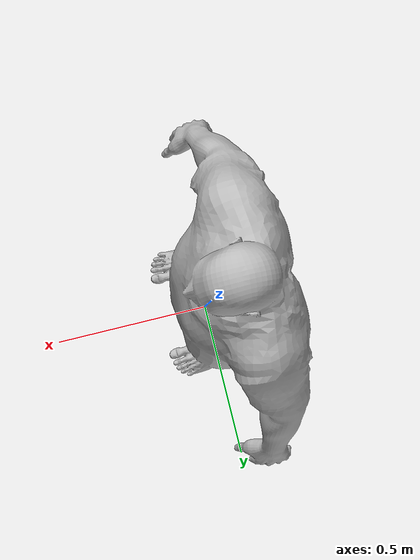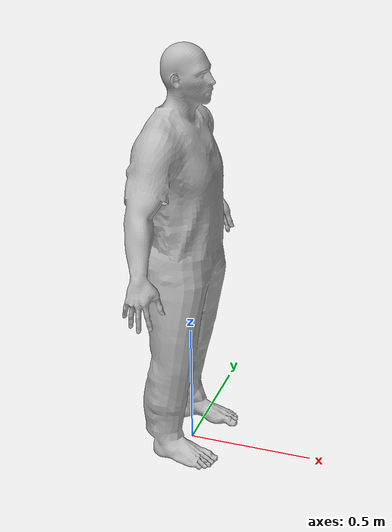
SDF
<?xml version="1.0" ?>
<sdf version='1.5'>
  <model name='specialforce'>
    <static>true</static>
      <link name='specialforce'>
         <collision name='specialforcec'>
          <geometry>
            <mesh>
              <scale>0.08 0.08 0.08</scale>
              <uri>model://specialforce/special.dae</uri>
            </mesh>
          </geometry>
        </collision>
        <visual name='specialforcec'>
          <geometry>
            <mesh>
              <scale>0.08 0.08 0.08</scale>
              <uri>model://specialforce/special.dae</uri>
            </mesh>
          </geometry>
          <material>
            <script>
              <name>specialforce</name>
              <uri>model://specialforce/special.dae</uri>
            </script>
          </material>
        </visual>
      </link>
  </model>
</sdf>
